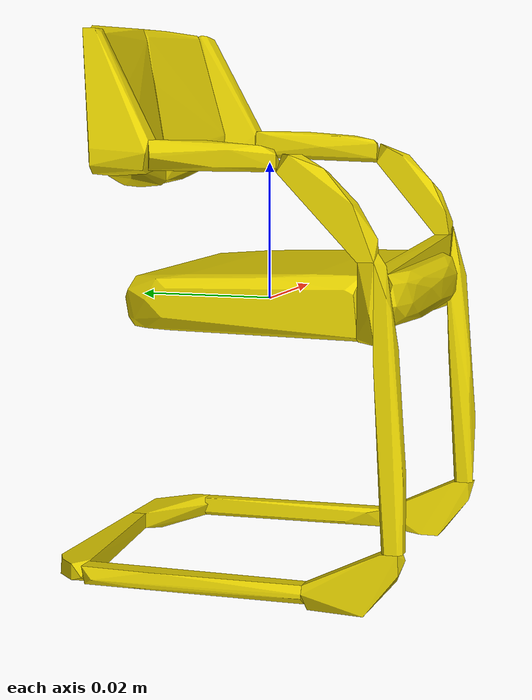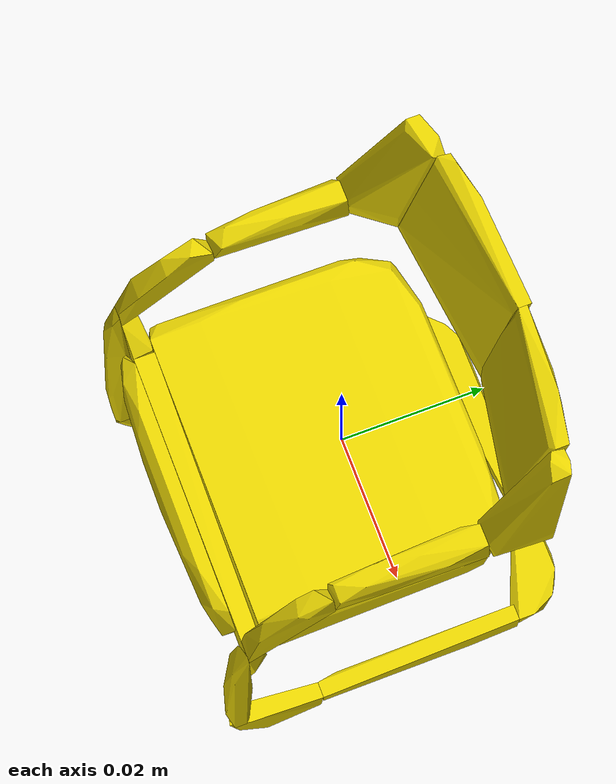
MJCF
<mujoco model="shapenetsem6">
  <asset>
    <mesh file="meshes/shapenetsem6/shapenetsem6_0.stl" name="shapenetsem6_0" scale="1.3 1.3 1.3"/>
    <mesh file="meshes/shapenetsem6/shapenetsem6_1.stl" name="shapenetsem6_1" scale="1.3 1.3 1.3"/>
    <mesh file="meshes/shapenetsem6/shapenetsem6_2.stl" name="shapenetsem6_2" scale="1.3 1.3 1.3"/>
    <mesh file="meshes/shapenetsem6/shapenetsem6_3.stl" name="shapenetsem6_3" scale="1.3 1.3 1.3"/>
    <mesh file="meshes/shapenetsem6/shapenetsem6_4.stl" name="shapenetsem6_4" scale="1.3 1.3 1.3"/>
    <mesh file="meshes/shapenetsem6/shapenetsem6_5.stl" name="shapenetsem6_5" scale="1.3 1.3 1.3"/>
    <mesh file="meshes/shapenetsem6/shapenetsem6_6.stl" name="shapenetsem6_6" scale="1.3 1.3 1.3"/>
    <mesh file="meshes/shapenetsem6/shapenetsem6_7.stl" name="shapenetsem6_7" scale="1.3 1.3 1.3"/>
    <mesh file="meshes/shapenetsem6/shapenetsem6_8.stl" name="shapenetsem6_8" scale="1.3 1.3 1.3"/>
    <mesh file="meshes/shapenetsem6/shapenetsem6_9.stl" name="shapenetsem6_9" scale="1.3 1.3 1.3"/>
    <mesh file="meshes/shapenetsem6/shapenetsem6_10.stl" name="shapenetsem6_10" scale="1.3 1.3 1.3"/>
    <mesh file="meshes/shapenetsem6/shapenetsem6_11.stl" name="shapenetsem6_11" scale="1.3 1.3 1.3"/>
    <mesh file="meshes/shapenetsem6/shapenetsem6_12.stl" name="shapenetsem6_12" scale="1.3 1.3 1.3"/>
    <mesh file="meshes/shapenetsem6/shapenetsem6_13.stl" name="shapenetsem6_13" scale="1.3 1.3 1.3"/>
    <mesh file="meshes/shapenetsem6/shapenetsem6_14.stl" name="shapenetsem6_14" scale="1.3 1.3 1.3"/>
    <mesh file="meshes/shapenetsem6/shapenetsem6_15.stl" name="shapenetsem6_15" scale="1.3 1.3 1.3"/>
    <mesh file="meshes/shapenetsem6/shapenetsem6_16.stl" name="shapenetsem6_16" scale="1.3 1.3 1.3"/>
    <mesh file="meshes/shapenetsem6/shapenetsem6_17.stl" name="shapenetsem6_17" scale="1.3 1.3 1.3"/>
    <mesh file="meshes/shapenetsem6/shapenetsem6_18.stl" name="shapenetsem6_18" scale="1.3 1.3 1.3"/>
    <mesh file="meshes/shapenetsem6/shapenetsem6_19.stl" name="shapenetsem6_19" scale="1.3 1.3 1.3"/>
  </asset>
  <worldbody>
    <body>
      <body name="collision">
        <geom pos="0 0 0" mesh="shapenetsem6_0" type="mesh" solimp="0.998 0.998 0.001" solref="0.001 1" density="100" friction="0.95 0.3 0.1" rgba="0.9 0.82 0 1" group="1" condim="4"/>
        <geom pos="0 0 0" mesh="shapenetsem6_1" type="mesh" solimp="0.998 0.998 0.001" solref="0.001 1" density="100" friction="0.95 0.3 0.1" rgba="0.9 0.82 0 1" group="1" condim="4"/>
        <geom pos="0 0 0" mesh="shapenetsem6_2" type="mesh" solimp="0.998 0.998 0.001" solref="0.001 1" density="100" friction="0.95 0.3 0.1" rgba="0.9 0.82 0 1" group="1" condim="4"/>
        <geom pos="0 0 0" mesh="shapenetsem6_3" type="mesh" solimp="0.998 0.998 0.001" solref="0.001 1" density="100" friction="0.95 0.3 0.1" rgba="0.9 0.82 0 1" group="1" condim="4"/>
        <geom pos="0 0 0" mesh="shapenetsem6_4" type="mesh" solimp="0.998 0.998 0.001" solref="0.001 1" density="100" friction="0.95 0.3 0.1" rgba="0.9 0.82 0 1" group="1" condim="4"/>
        <geom pos="0 0 0" mesh="shapenetsem6_5" type="mesh" solimp="0.998 0.998 0.001" solref="0.001 1" density="100" friction="0.95 0.3 0.1" rgba="0.9 0.82 0 1" group="1" condim="4"/>
        <geom pos="0 0 0" mesh="shapenetsem6_6" type="mesh" solimp="0.998 0.998 0.001" solref="0.001 1" density="100" friction="0.95 0.3 0.1" rgba="0.9 0.82 0 1" group="1" condim="4"/>
        <geom pos="0 0 0" mesh="shapenetsem6_7" type="mesh" solimp="0.998 0.998 0.001" solref="0.001 1" density="100" friction="0.95 0.3 0.1" rgba="0.9 0.82 0 1" group="1" condim="4"/>
        <geom pos="0 0 0" mesh="shapenetsem6_8" type="mesh" solimp="0.998 0.998 0.001" solref="0.001 1" density="100" friction="0.95 0.3 0.1" rgba="0.9 0.82 0 1" group="1" condim="4"/>
        <geom pos="0 0 0" mesh="shapenetsem6_9" type="mesh" solimp="0.998 0.998 0.001" solref="0.001 1" density="100" friction="0.95 0.3 0.1" rgba="0.9 0.82 0 1" group="1" condim="4"/>
        <geom pos="0 0 0" mesh="shapenetsem6_10" type="mesh" solimp="0.998 0.998 0.001" solref="0.001 1" density="100" friction="0.95 0.3 0.1" rgba="0.9 0.82 0 1" group="1" condim="4"/>
        <geom pos="0 0 0" mesh="shapenetsem6_11" type="mesh" solimp="0.998 0.998 0.001" solref="0.001 1" density="100" friction="0.95 0.3 0.1" rgba="0.9 0.82 0 1" group="1" condim="4"/>
        <geom pos="0 0 0" mesh="shapenetsem6_12" type="mesh" solimp="0.998 0.998 0.001" solref="0.001 1" density="100" friction="0.95 0.3 0.1" rgba="0.9 0.82 0 1" group="1" condim="4"/>
        <geom pos="0 0 0" mesh="shapenetsem6_13" type="mesh" solimp="0.998 0.998 0.001" solref="0.001 1" density="100" friction="0.95 0.3 0.1" rgba="0.9 0.82 0 1" group="1" condim="4"/>
        <geom pos="0 0 0" mesh="shapenetsem6_14" type="mesh" solimp="0.998 0.998 0.001" solref="0.001 1" density="100" friction="0.95 0.3 0.1" rgba="0.9 0.82 0 1" group="1" condim="4"/>
        <geom pos="0 0 0" mesh="shapenetsem6_15" type="mesh" solimp="0.998 0.998 0.001" solref="0.001 1" density="100" friction="0.95 0.3 0.1" rgba="0.9 0.82 0 1" group="1" condim="4"/>
        <geom pos="0 0 0" mesh="shapenetsem6_16" type="mesh" solimp="0.998 0.998 0.001" solref="0.001 1" density="100" friction="0.95 0.3 0.1" rgba="0.9 0.82 0 1" group="1" condim="4"/>
        <geom pos="0 0 0" mesh="shapenetsem6_17" type="mesh" solimp="0.998 0.998 0.001" solref="0.001 1" density="100" friction="0.95 0.3 0.1" rgba="0.9 0.82 0 1" group="1" condim="4"/>
        <geom pos="0 0 0" mesh="shapenetsem6_18" type="mesh" solimp="0.998 0.998 0.001" solref="0.001 1" density="100" friction="0.95 0.3 0.1" rgba="0.9 0.82 0 1" group="1" condim="4"/>
        <geom pos="0 0 0" mesh="shapenetsem6_19" type="mesh" solimp="0.998 0.998 0.001" solref="0.001 1" density="100" friction="0.95 0.3 0.1" rgba="0.9 0.82 0 1" group="1" condim="4"/>
      </body>
      <body name="visual">
        <geom pos="0 0 0" mesh="shapenetsem6_0" type="mesh" rgba="0.9 0.82 0 1" conaffinity="0" contype="0" group="0" mass="0.0001"/>
        <geom pos="0 0 0" mesh="shapenetsem6_1" type="mesh" rgba="0.9 0.82 0 1" conaffinity="0" contype="0" group="0" mass="0.0001"/>
        <geom pos="0 0 0" mesh="shapenetsem6_2" type="mesh" rgba="0.9 0.82 0 1" conaffinity="0" contype="0" group="0" mass="0.0001"/>
        <geom pos="0 0 0" mesh="shapenetsem6_3" type="mesh" rgba="0.9 0.82 0 1" conaffinity="0" contype="0" group="0" mass="0.0001"/>
        <geom pos="0 0 0" mesh="shapenetsem6_4" type="mesh" rgba="0.9 0.82 0 1" conaffinity="0" contype="0" group="0" mass="0.0001"/>
        <geom pos="0 0 0" mesh="shapenetsem6_5" type="mesh" rgba="0.9 0.82 0 1" conaffinity="0" contype="0" group="0" mass="0.0001"/>
        <geom pos="0 0 0" mesh="shapenetsem6_6" type="mesh" rgba="0.9 0.82 0 1" conaffinity="0" contype="0" group="0" mass="0.0001"/>
        <geom pos="0 0 0" mesh="shapenetsem6_7" type="mesh" rgba="0.9 0.82 0 1" conaffinity="0" contype="0" group="0" mass="0.0001"/>
        <geom pos="0 0 0" mesh="shapenetsem6_8" type="mesh" rgba="0.9 0.82 0 1" conaffinity="0" contype="0" group="0" mass="0.0001"/>
        <geom pos="0 0 0" mesh="shapenetsem6_9" type="mesh" rgba="0.9 0.82 0 1" conaffinity="0" contype="0" group="0" mass="0.0001"/>
        <geom pos="0 0 0" mesh="shapenetsem6_10" type="mesh" rgba="0.9 0.82 0 1" conaffinity="0" contype="0" group="0" mass="0.0001"/>
        <geom pos="0 0 0" mesh="shapenetsem6_11" type="mesh" rgba="0.9 0.82 0 1" conaffinity="0" contype="0" group="0" mass="0.0001"/>
        <geom pos="0 0 0" mesh="shapenetsem6_12" type="mesh" rgba="0.9 0.82 0 1" conaffinity="0" contype="0" group="0" mass="0.0001"/>
        <geom pos="0 0 0" mesh="shapenetsem6_13" type="mesh" rgba="0.9 0.82 0 1" conaffinity="0" contype="0" group="0" mass="0.0001"/>
        <geom pos="0 0 0" mesh="shapenetsem6_14" type="mesh" rgba="0.9 0.82 0 1" conaffinity="0" contype="0" group="0" mass="0.0001"/>
        <geom pos="0 0 0" mesh="shapenetsem6_15" type="mesh" rgba="0.9 0.82 0 1" conaffinity="0" contype="0" group="0" mass="0.0001"/>
        <geom pos="0 0 0" mesh="shapenetsem6_16" type="mesh" rgba="0.9 0.82 0 1" conaffinity="0" contype="0" group="0" mass="0.0001"/>
        <geom pos="0 0 0" mesh="shapenetsem6_17" type="mesh" rgba="0.9 0.82 0 1" conaffinity="0" contype="0" group="0" mass="0.0001"/>
        <geom pos="0 0 0" mesh="shapenetsem6_18" type="mesh" rgba="0.9 0.82 0 1" conaffinity="0" contype="0" group="0" mass="0.0001"/>
        <geom pos="0 0 0" mesh="shapenetsem6_19" type="mesh" rgba="0.9 0.82 0 1" conaffinity="0" contype="0" group="0" mass="0.0001"/>
      </body>
      <site rgba="0 0 0 0" size="0.005" pos="0 0 -0.06" name="bottom_site"/>
      <site rgba="0 0 0 0" size="0.005" pos="0 0 0.04" name="top_site"/>
      <site rgba="0 0 0 0" size="0.005" pos="0.025 0.025 0" name="horizontal_radius_site"/>
    </body>
  </worldbody>
</mujoco>
